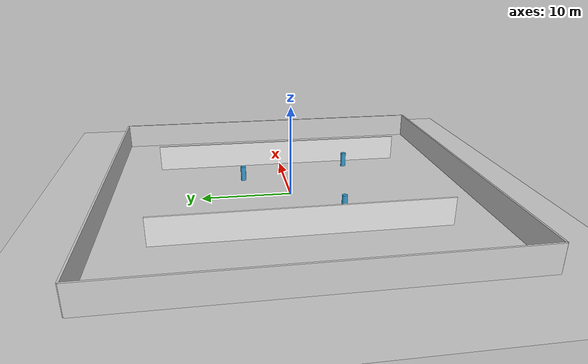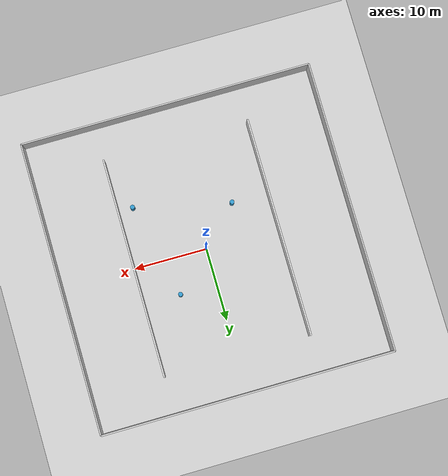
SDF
<?xml version="1.0" ?>
<sdf version="1.6">
  <world name="hospital_clean">
    <plugin name="gazebo_ros_state" filename="libgazebo_ros_state.so">
      <ros><namespace>/</namespace></ros>
      <update_rate>1.0</update_rate>
    </plugin>

    <physics type="ode">
      <max_step_size>0.001</max_step_size>
      <real_time_factor>1</real_time_factor>
      <real_time_update_rate>1000</real_time_update_rate>
    </physics>

    <include>
      <uri>model://ground_plane</uri>
    </include>

    <include>
      <uri>model://sun</uri>
    </include>

    <!-- Hospital Building - 40m x 40m -->
    <model name="hospital_walls">
      <static>true</static>
      <pose>0 0 0 0 0 0</pose>
      <link name="link">
        <!-- Outer walls -->
        <collision name="north_wall">
          <pose>0 20 1.5 0 0 0</pose>
          <geometry><box><size>40 0.2 3</size></box></geometry>
        </collision>
        <visual name="north_wall">
          <pose>0 20 1.5 0 0 0</pose>
          <geometry><box><size>40 0.2 3</size></box></geometry>
          <material><ambient>0.8 0.8 0.8 1</ambient></material>
        </visual>

        <collision name="south_wall">
          <pose>0 -20 1.5 0 0 0</pose>
          <geometry><box><size>40 0.2 3</size></box></geometry>
        </collision>
        <visual name="south_wall">
          <pose>0 -20 1.5 0 0 0</pose>
          <geometry><box><size>40 0.2 3</size></box></geometry>
          <material><ambient>0.8 0.8 0.8 1</ambient></material>
        </visual>

        <collision name="east_wall">
          <pose>20 0 1.5 0 0 0</pose>
          <geometry><box><size>0.2 40 3</size></box></geometry>
        </collision>
        <visual name="east_wall">
          <pose>20 0 1.5 0 0 0</pose>
          <geometry><box><size>0.2 40 3</size></box></geometry>
          <material><ambient>0.8 0.8 0.8 1</ambient></material>
        </visual>

        <collision name="west_wall">
          <pose>-20 0 1.5 0 0 0</pose>
          <geometry><box><size>0.2 40 3</size></box></geometry>
        </collision>
        <visual name="west_wall">
          <pose>-20 0 1.5 0 0 0</pose>
          <geometry><box><size>0.2 40 3</size></box></geometry>
          <material><ambient>0.8 0.8 0.8 1</ambient></material>
        </visual>

        <!-- Interior corridor walls -->
        <collision name="corridor_1">
          <pose>-10 0 1.5 0 0 0</pose>
          <geometry><box><size>0.2 30 3</size></box></geometry>
        </collision>
        <visual name="corridor_1">
          <pose>-10 0 1.5 0 0 0</pose>
          <geometry><box><size>0.2 30 3</size></box></geometry>
          <material><ambient>0.9 0.9 0.9 1</ambient></material>
        </visual>

        <collision name="corridor_2">
          <pose>10 0 1.5 0 0 0</pose>
          <geometry><box><size>0.2 30 3</size></box></geometry>
        </collision>
        <visual name="corridor_2">
          <pose>10 0 1.5 0 0 0</pose>
          <geometry><box><size>0.2 30 3</size></box></geometry>
          <material><ambient>0.9 0.9 0.9 1</ambient></material>
        </visual>
      </link>
    </model>

    <!-- Simple Person Obstacles (cylinders) -->
    <model name="person_1">
      <static>true</static>
      <pose>5 5 0.85 0 0 0</pose>
      <link name="link">
        <collision name="collision">
          <geometry><cylinder><radius>0.3</radius><length>1.7</length></cylinder></geometry>
        </collision>
        <visual name="visual">
          <geometry><cylinder><radius>0.3</radius><length>1.7</length></cylinder></geometry>
          <material><ambient>0.2 0.6 0.8 1</ambient></material>
        </visual>
      </link>
    </model>

    <model name="person_2">
      <static>true</static>
      <pose>-5 -5 0.85 0 0 0</pose>
      <link name="link">
        <collision name="collision">
          <geometry><cylinder><radius>0.3</radius><length>1.7</length></cylinder></geometry>
        </collision>
        <visual name="visual">
          <geometry><cylinder><radius>0.3</radius><length>1.7</length></cylinder></geometry>
          <material><ambient>0.2 0.6 0.8 1</ambient></material>
        </visual>
      </link>
    </model>

    <model name="person_3">
      <static>true</static>
      <pose>8 -8 0.85 0 0 0</pose>
      <link name="link">
        <collision name="collision">
          <geometry><cylinder><radius>0.3</radius><length>1.7</length></cylinder></geometry>
        </collision>
        <visual name="visual">
          <geometry><cylinder><radius>0.3</radius><length>1.7</length></cylinder></geometry>
          <material><ambient>0.2 0.6 0.8 1</ambient></material>
        </visual>
      </link>
    </model>

  </world>
</sdf>
